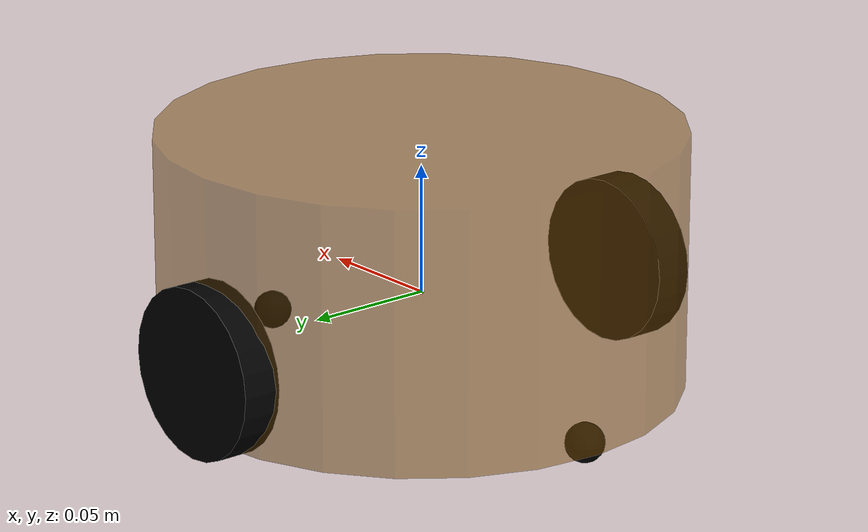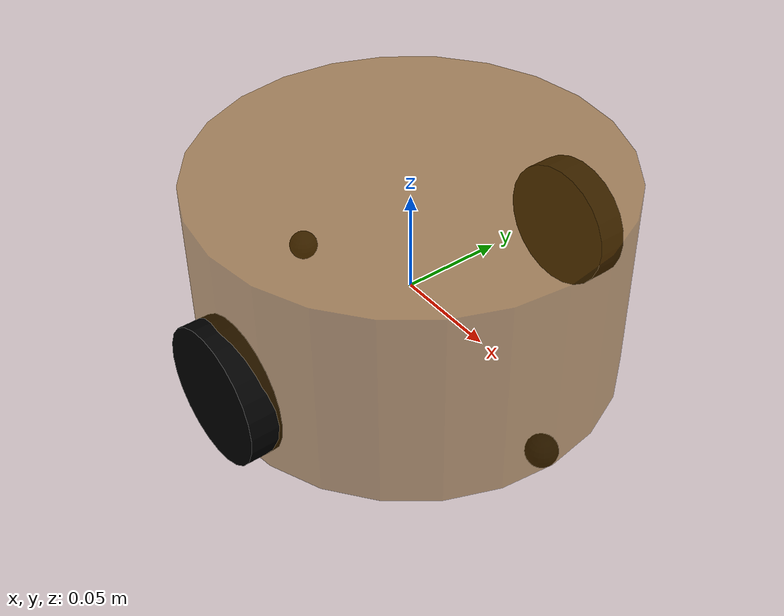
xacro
<robot name="mycar" xmlns:xacro="http://www.ros.org/wiki/xacro">

    <!-- 定义常数 pi -->
    <xacro:property name="PI" value="3.1415927" />

    <!-- footprint -->
    <xacro:property name="footprint_radius" value="0.001" />
    <link name="base_footprint">
        <visual>
            <geometry>
                <sphere radius="${footprint_radius}" />
            </geometry>
            <origin xyz="0 0 0" rpy="0 0 0" />
            <material name="footprint_color">
                <color rgba="0 1 0 1" />
            </material>
        </visual>
    </link>

    <!-- 底盘为圆柱状，半径 10cm，高 8cm -->
    <xacro:property name="base_radius" value="0.1" />
    <xacro:property name="base_length" value="0.08" />
    <xacro:property name="base_mass" value="1" />

    <link name="base_link">
        <visual>
            <geometry>
                <cylinder radius="${base_radius}" length="${base_radius}" />
            </geometry>

            <material name="yellow">
                <color rgba="0.5 0.3 0.0 0.5" />
            </material>
        </visual>

        <!-- 若要在 gazebo 中显示机器人模型，则需要设置碰撞参数和惯性矩阵
            碰撞参数：对于规则物体，碰撞参数即为 visual 中的 geometry
            惯性矩阵：需要计算得出，可调用封装好的 xacro 宏-->

         <collision>
            <geometry>
                <cylinder radius="${base_radius}" length="${base_radius}" />
            </geometry>
        </collision>

        <xacro:cylinder_inertial_matrix m="${base_mass}" r="${base_radius}" h="${base_length}" />
    </link>

    <!-- 设置在 gazebo 中显示的颜色（之前在 rviz 中设置的颜色无法在 gazebo 中显示，故需另外设置） -->
    <gazebo reference="base_link">
        <material>Gazebo/Yellow</material>
    </gazebo>

    <!-- 关联 footprint 和 base_link -->
    <!-- 底盘离地间距为 1.5cm -->
    <xacro:property name="lidi" value="0.015" />
    <joint name="base2foot" type="fixed">
        <parent link="base_footprint" />
        <child link="base_link" />
        <origin xyz="0 0 ${lidi}" rpy="0 0 0" />
    </joint>

    <!-- 左右驱动轮 -->
    <!-- 两个驱动轮半径为 3.25cm,轮胎宽度1.5cm -->
    <xacro:property name="go_wheel_radius" value="0.0325" />
    <xacro:property name="go_wheel_length" value="0.015" />
    <xacro:property name="go_wheel_joint_z" value="${-1*(base_length / 2 + lidi - go_wheel_radius)}" />
    <xacro:property name="go_wheel_mass" value="0.1" />

    <xacro:macro name="go_wheel_func" params="go_wheel_name flag">
    <!-- wheel_name 为轮子名字，输入 left 或 right -->
    <!-- flag 为标志，左轮为1，右轮为-1 -->
        <link name="${go_wheel_name}_wheel">
            <visual>
                <geometry>
                    <cylinder radius="${go_wheel_radius}" length="${go_wheel_length}" />
                </geometry>
                <origin xyz="0 0 0" rpy="${PI / 2} 0 0" />
                <material name="black">
                    <color rgba="0 0 0 1" />
                </material>
            </visual>

            <collision>
                <geometry>
                    <cylinder radius="${go_wheel_radius}" length="${go_wheel_length}" />
                </geometry>
            </collision>

            <xacro:cylinder_inertial_matrix m="${go_wheel_mass}" r="${go_wheel_radius}" h="${go_wheel_length}" />

        </link>

         <gazebo reference="${go_wheel_name}_wheel">
            <material>Gazebo/Black</material>
        </gazebo>

        <!-- 关节偏移：
                x 无偏移
                y 车体半径(左轮在正半轴，右轮在负半轴)
                z z = -(车体高度 / 2 + 离地间距 - 车轮半径) -->
        <joint name="${go_wheel_name}2base" type="continuous">
            <parent link="base_link" />
            <child link="${go_wheel_name}_wheel" />
            <origin xyz="0 ${flag * base_radius} ${go_wheel_joint_z}" />
            <axis xyz="0 1 0" />
        </joint>
    </xacro:macro>

    <xacro:go_wheel_func go_wheel_name="left" flag="1" />
    <xacro:go_wheel_func go_wheel_name="right" flag="-1" />

    <!-- 前后万向轮 -->
    <!-- 两个万向轮为球状，半径 0.75cm -->
    <xacro:property name="round_wheel_radius" value="0.0075" />
    <xacro:property name="round_wheel_mass" value="0.01" />

    <xacro:macro name="round_wheel_func" params="round_wheel_name flag">
        <link name="${round_wheel_name}_wheel">
            <visual>
                <geometry>
                    <sphere radius="${round_wheel_radius}" />
                </geometry>

                <material name="black">
                    <color rgba="0 0 0 1" />
                </material>
            </visual>

            <collision>
                <geometry>
                    <sphere radius="${round_wheel_radius}" />
                </geometry>
            </collision>

            <xacro:sphere_inertial_matrix m="${round_wheel_mass}" r="${round_wheel_radius}" />

        </link>

         <gazebo reference="${round_wheel_name}_wheel">
            <material>Gazebo/Black</material>
        </gazebo>

        <!-- 关节偏移：
                x x = 车体半径 - 轮子半径(前轮在正半轴，后轮在负半轴)
                y 无偏移
                z z = -(车体高度 / 2 + 离地间距 / 2) -->
        <joint name="${round_wheel_name}2base" type="continuous">
            <parent link="base_link" />
            <child link="${round_wheel_name}_wheel" />
            <origin xyz="${flag * (base_radius - round_wheel_radius)} 0 ${-(base_length / 2 + lidi / 2)}" />
            <axis xyz="1 1 1" />
        </joint>
    </xacro:macro>

    <xacro:round_wheel_func round_wheel_name="front" flag="1" />
    <xacro:round_wheel_func round_wheel_name="back" flag="-1" />

</robot>
